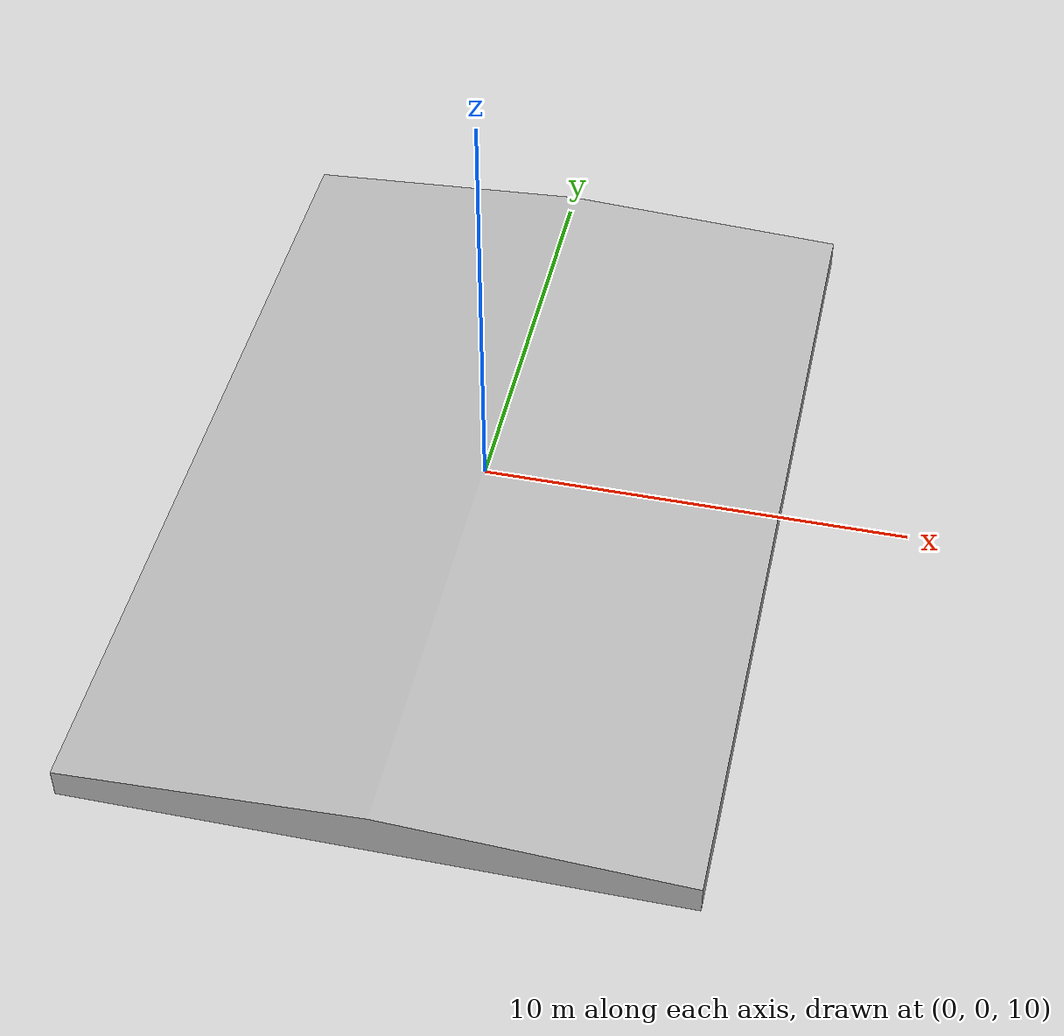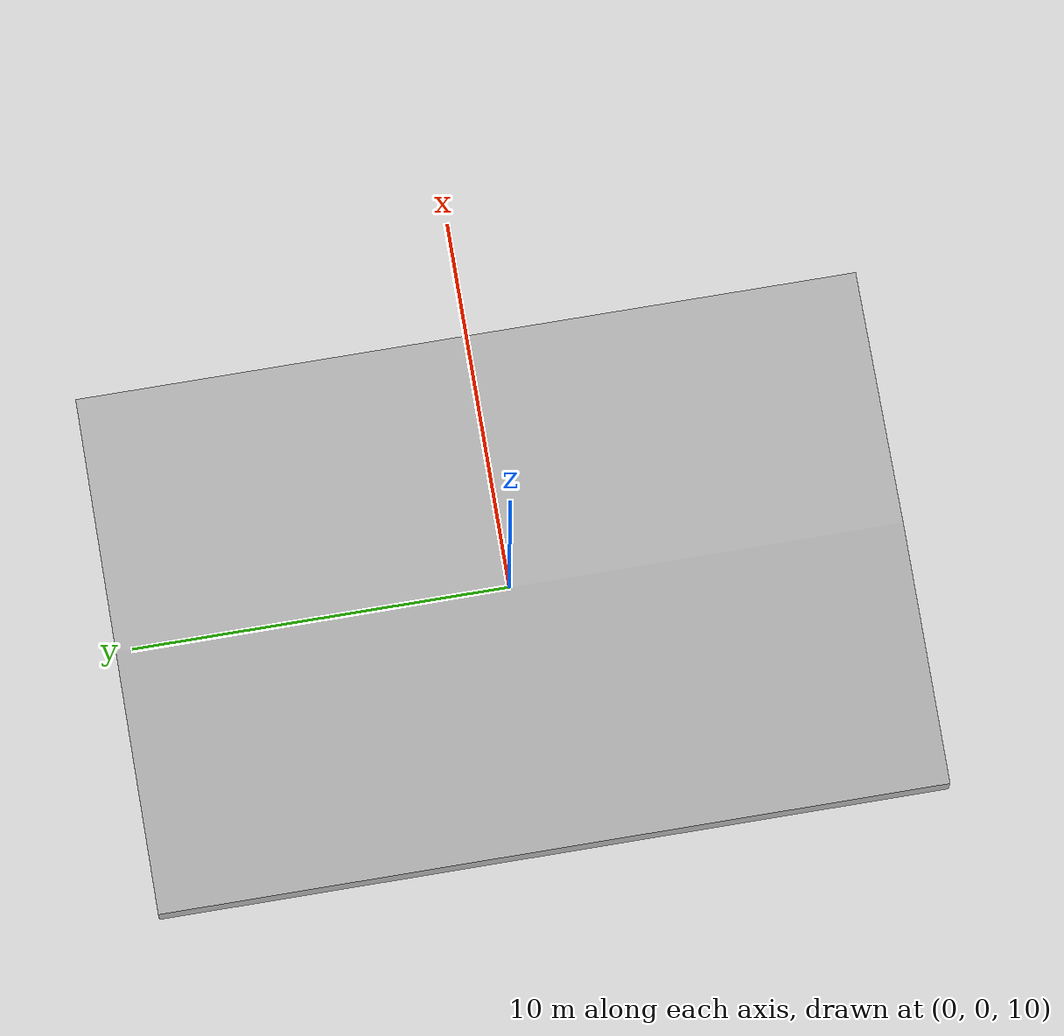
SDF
<?xml version="1.0" ?>
<sdf version="1.6">
  <model name="aws_robomaker_warehouse_RoofB_01_classic">
    <link name="link">
      <inertial>
        <mass>1000</mass>
        <pose frame=''>0 0 0 0 0 0</pose>
        <inertia>
          <ixx>834024.533</ixx>
          <ixy>0</ixy>
          <ixz>0</ixz>
          <iyy>459441.200</iyy>
          <iyz>0</iyz>
          <izz>1302083.333</izz>
        </inertia>
      </inertial>
      <collision name="collision">
        <geometry>
          <mesh>
            <uri>model://aws_robomaker_warehouse_RoofB_01_classic/meshes/aws_robomaker_warehouse_RoofB_01_classic_collision.DAE</uri>
            <scale>1 1 1</scale>
          </mesh>
        </geometry>
		<surface>
          <friction>
            <ode>
              <mu>0.6</mu>
              <mu2>0.6</mu2>
              <fdir1>0 0 0</fdir1>
              <slip1>0</slip1>
              <slip2>0</slip2>
            </ode>
            <torsional>
              <coefficient>1</coefficient>
              <patch_radius>0</patch_radius>
              <surface_radius>0</surface_radius>
              <use_patch_radius>1</use_patch_radius>
              <ode>
                <slip>0</slip>
              </ode>
            </torsional>
          </friction>
        </surface>
      </collision>
      <visual name="visual">
	    <geometry>
          <mesh>
            <uri>model://aws_robomaker_warehouse_RoofB_01_classic/meshes/aws_robomaker_warehouse_RoofB_01_classic_visual.DAE</uri>
          </mesh>
        </geometry>
      <meta> <layer> 3 </layer></meta>
    </visual>
    </link>
    <static>1</static>
  </model>
</sdf>
